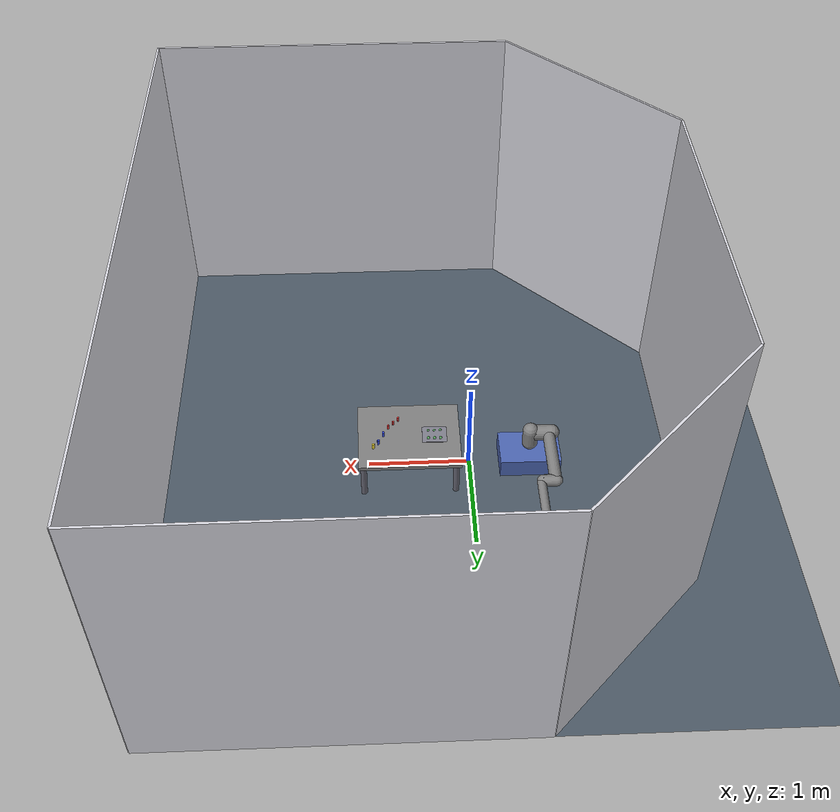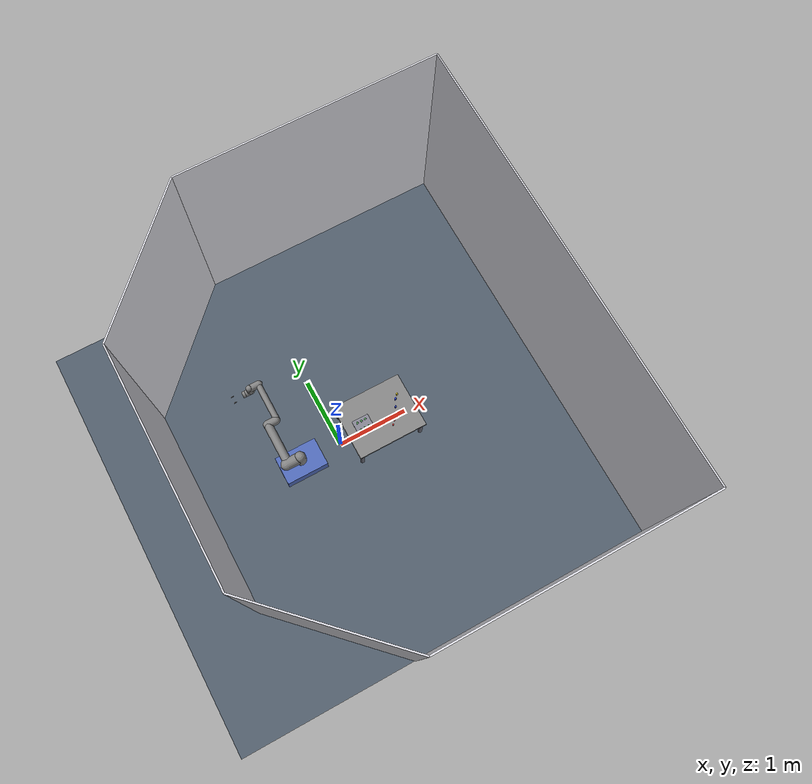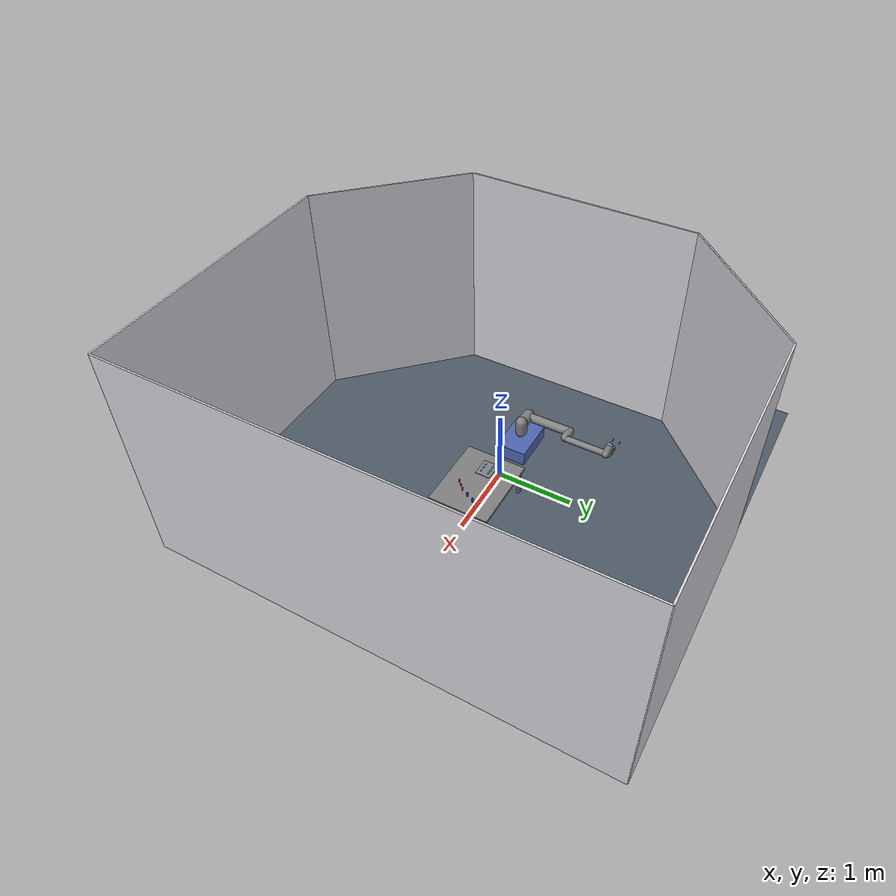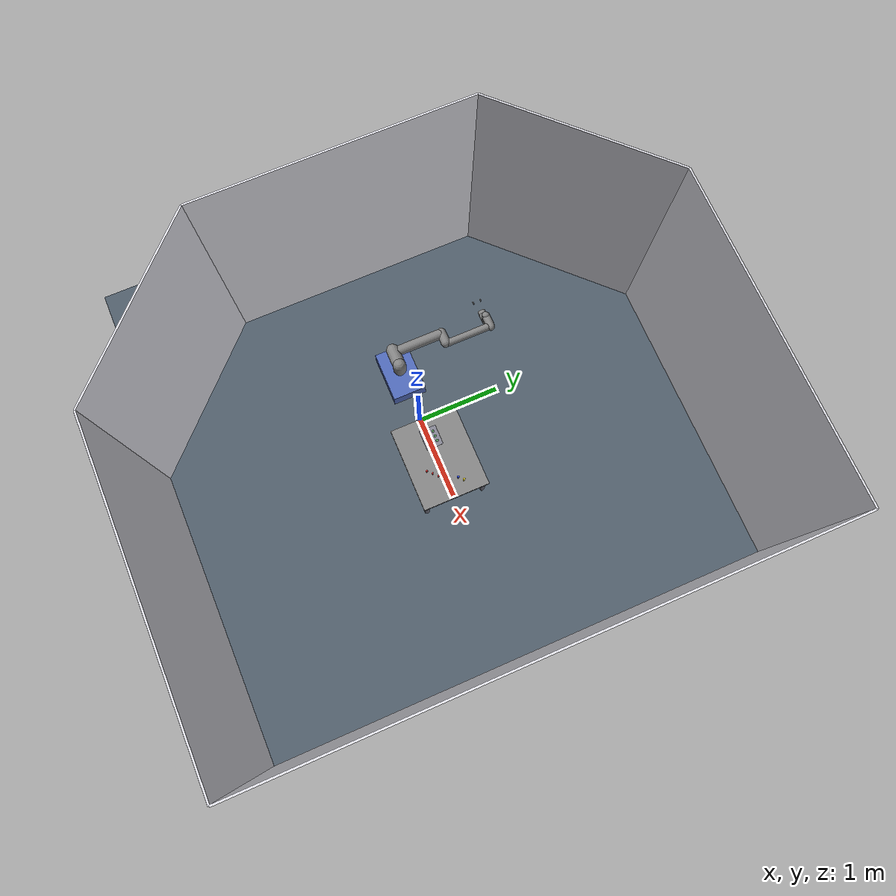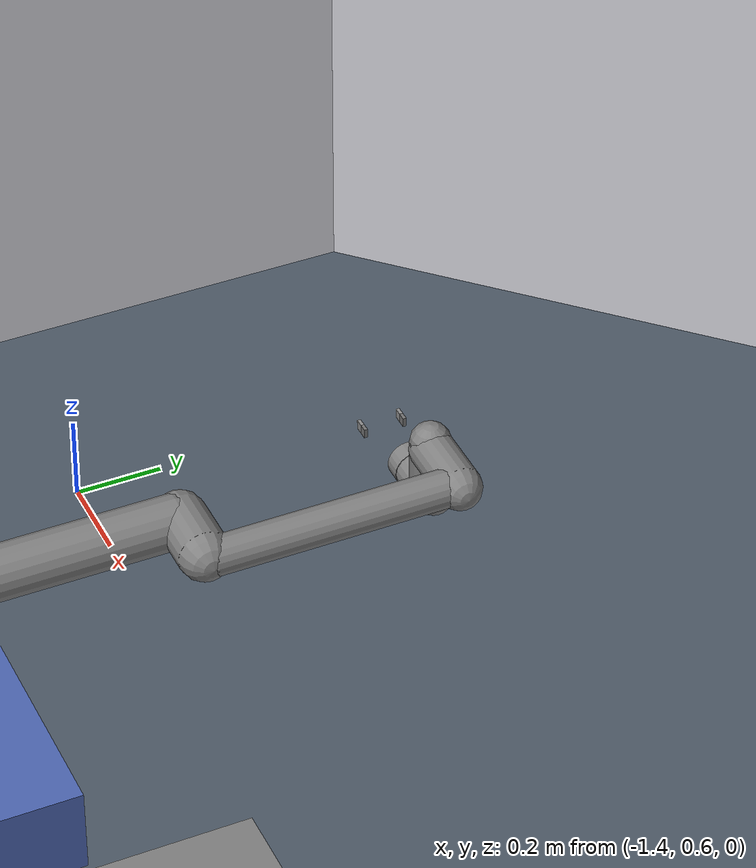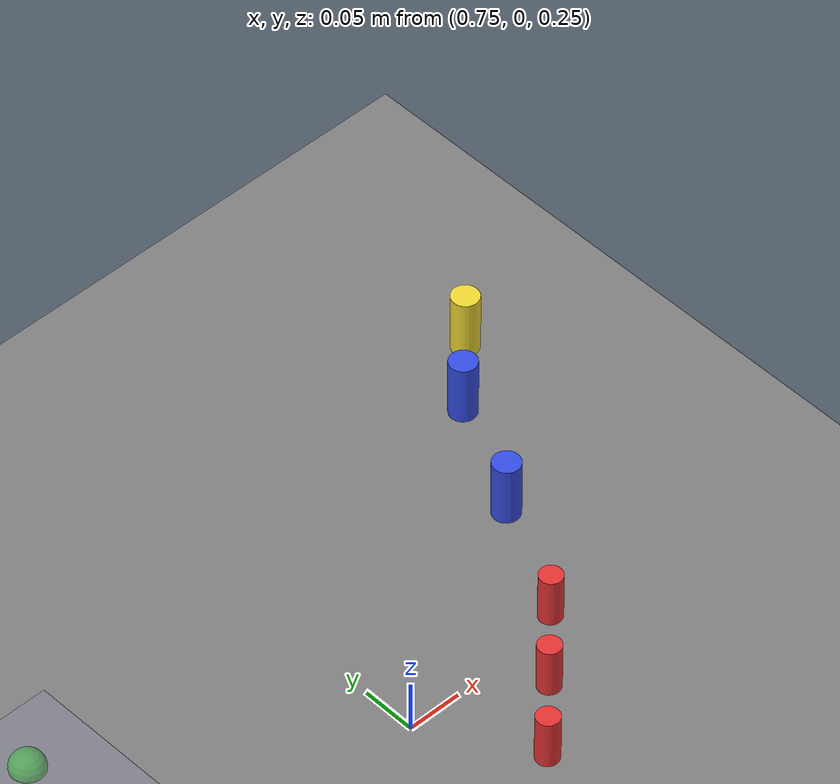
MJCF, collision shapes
<mujoco model="precision_placement">
  <!-- SPARK robosuite-style scene: Fine manipulation precision task -->
  <include file="ur_gripper.xml"/>

  <compiler angle="radian" autolimits="true"/>
  <option timestep="0.002" gravity="0 0 -9.81"/>

  <visual>
    <headlight diffuse="0.4 0.4 0.4" ambient="0.2 0.2 0.2" specular="0 0 0"/>
    <rgba haze="0.15 0.25 0.35 1"/>
    <global azimuth="120" elevation="-20"/>
  </visual>

  <statistic center="0.4 0 0.5" extent="1.2"/>

  <asset>
    <texture type="skybox" builtin="gradient" rgb1="0.3 0.5 0.8" rgb2="0.1 0.2 0.4" width="512" height="3072"/>
    <texture type="2d" name="floor_tex" builtin="checker" rgb1="0.35 0.4 0.45" rgb2="0.25 0.3 0.35" width="512" height="512" mark="cross" markrgb="0.5 0.5 0.55"/>
    <material name="floor_mat" texture="floor_tex" texrepeat="15 15" reflectance="0.2"/>
    <material name="table_ceramic" rgba="0.9 0.9 0.92 1"/>
    <material name="table_legs_metal" rgba="0.4 0.4 0.45 1" reflectance="0.8"/>
    <material name="walls_mat" rgba="0.85 0.85 0.88 1"/>
    <material name="target_green" rgba="0.2 0.8 0.2 0.5" reflectance="0.0"/>
    <material name="peg_red" rgba="0.9 0.2 0.2 1" reflectance="0.4"/>
    <material name="peg_blue" rgba="0.2 0.3 0.9 1" reflectance="0.4"/>
    <material name="peg_yellow" rgba="0.95 0.85 0.2 1" reflectance="0.4"/>
    <material name="base_plate" rgba="0.5 0.5 0.55 1" reflectance="0.3"/>
    <material name="pedestal_mat" rgba="0.3 0.4 0.7 1" reflectance="0.5"/>
  </asset>

  <worldbody>
    <!-- Soft distributed lighting -->
    <light pos="2 2 3" dir="-0.5 -0.5 -1" diffuse="0.25 0.25 0.25"/>
    <light pos="-2 2 3" dir="0.5 -0.5 -1" diffuse="0.2 0.2 0.2"/>
    <light pos="0 -2 3" dir="0 0.5 -1" diffuse="0.2 0.2 0.2"/>
    <light pos="0 0 4" dir="0 0 -1" directional="true" diffuse="0.5 0.5 0.5"/>

    <geom condim="3" group="1" material="floor_mat" name="floor" pos="0 0 0" size="3 3 .125" type="plane"/>

    <!-- Walls -->
    <geom pos="-1.25 2.25 1.5" quat="0.6532815 0.6532815 0.2705981 0.2705981" size="1.06 1.5 0.01" type="box" conaffinity="0" contype="0" group="1" material="walls_mat"/>
    <geom pos="-1.25 -2.25 1.5" quat="0.6532815 0.6532815 -0.2705981 -0.2705981" size="1.06 1.5 0.01" type="box" conaffinity="0" contype="0" group="1" material="walls_mat"/>
    <geom pos="1.25 3 1.5" quat="0.7071 0.7071 0 0" size="1.75 1.5 0.01" type="box" conaffinity="0" contype="0" group="1" material="walls_mat"/>
    <geom pos="1.25 -3 1.5" quat="0.7071 -0.7071 0 0" size="1.75 1.5 0.01" type="box" conaffinity="0" contype="0" group="1" material="walls_mat"/>
    <geom pos="-2 0 1.5" quat="0.5 0.5 0.5 0.5" size="1.5 1.5 0.01" type="box" conaffinity="0" contype="0" group="1" material="walls_mat"/>
    <geom pos="3 0 1.5" quat="0.5 0.5 -0.5 -0.5" size="3 1.5 0.01" type="box" conaffinity="0" contype="0" group="1" material="walls_mat"/>

    <body name="robot_pedestal" pos="-0.6 0 0.1">
      <geom type="box" size="0.3 0.2 0.1" material="pedestal_mat"/>
    </body>

    <!-- Table -->
    <body name="table" pos="0.6 0 0.4">
      <geom pos="0 0 0" size="0.5 0.4 0.02" type="box" group="0" friction="1 0.005 0.0001"/>
      <geom pos="0 0 0" size="0.5 0.4 0.02" type="box" conaffinity="0" contype="0" group="1" material="table_ceramic"/>
      <geom pos="0.45 0.35 -0.2" size="0.03 0.2" type="cylinder" conaffinity="0" contype="0" group="1" material="table_legs_metal"/>
      <geom pos="0.45 -0.35 -0.2" size="0.03 0.2" type="cylinder" conaffinity="0" contype="0" group="1" material="table_legs_metal"/>
      <geom pos="-0.45 0.35 -0.2" size="0.03 0.2" type="cylinder" conaffinity="0" contype="0" group="1" material="table_legs_metal"/>
      <geom pos="-0.45 -0.35 -0.2" size="0.03 0.2" type="cylinder" conaffinity="0" contype="0" group="1" material="table_legs_metal"/>
    </body>

    <!-- Precision placement board -->
    <body name="placement_board" pos="0.35 0 0.42">
      <geom pos="0 0 0" size="0.12 0.1 0.008" type="box" material="base_plate"/>
      <!-- Target holes (visual markers) -->
      <geom pos="-0.06 -0.05 0.01" size="0.012" type="sphere" conaffinity="0" contype="0" material="target_green"/>
      <geom pos="0.0 -0.05 0.01" size="0.012" type="sphere" conaffinity="0" contype="0" material="target_green"/>
      <geom pos="0.06 -0.05 0.01" size="0.012" type="sphere" conaffinity="0" contype="0" material="target_green"/>
      <geom pos="-0.06 0.05 0.01" size="0.015" type="sphere" conaffinity="0" contype="0" material="target_green"/>
      <geom pos="0.0 0.05 0.01" size="0.015" type="sphere" conaffinity="0" contype="0" material="target_green"/>
      <geom pos="0.06 0.05 0.01" size="0.015" type="sphere" conaffinity="0" contype="0" material="target_green"/>
    </body>

    <!-- Small pegs -->
    <body name="small_peg1" pos="0.7 -0.2 0.44">
      <freejoint name="small_peg1_free"/>
      <geom type="cylinder" size="0.01 0.025" material="peg_red" condim="6" friction="1 0.5 0.0001"/>
      <inertial pos="0 0 0" mass="0.015" diaginertia="0.00001 0.00001 0.00001"/>
    </body>

    <body name="small_peg2" pos="0.75 -0.15 0.44">
      <freejoint name="small_peg2_free"/>
      <geom type="cylinder" size="0.01 0.025" material="peg_red" condim="6" friction="1 0.5 0.0001"/>
      <inertial pos="0 0 0" mass="0.015" diaginertia="0.00001 0.00001 0.00001"/>
    </body>

    <body name="small_peg3" pos="0.8 -0.1 0.44">
      <freejoint name="small_peg3_free"/>
      <geom type="cylinder" size="0.01 0.025" material="peg_red" condim="6" friction="1 0.5 0.0001"/>
      <inertial pos="0 0 0" mass="0.015" diaginertia="0.00001 0.00001 0.00001"/>
    </body>

    <!-- Medium pegs -->
    <body name="med_peg1" pos="0.85 0 0.445">
      <freejoint name="med_peg1_free"/>
      <geom type="cylinder" size="0.012 0.03" material="peg_blue" condim="6" friction="1 0.5 0.0001"/>
      <inertial pos="0 0 0" mass="0.02" diaginertia="0.00001 0.00001 0.00001"/>
    </body>

    <body name="med_peg2" pos="0.9 0.1 0.445">
      <freejoint name="med_peg2_free"/>
      <geom type="cylinder" size="0.012 0.03" material="peg_blue" condim="6" friction="1 0.5 0.0001"/>
      <inertial pos="0 0 0" mass="0.02" diaginertia="0.00001 0.00001 0.00001"/>
    </body>

    <body name="med_peg3" pos="0.95 0.15 0.445">
      <freejoint name="med_peg3_free"/>
      <geom type="cylinder" size="0.012 0.03" material="peg_yellow" condim="6" friction="1 0.5 0.0001"/>
      <inertial pos="0 0 0" mass="0.02" diaginertia="0.00001 0.00001 0.00001"/>
    </body>

    <!-- Cameras -->
    <body name="camera1" pos="0.6 0.0 1.8">
      <camera name="camera1" fovy="50" pos="0 0 0" xyaxes="1 0 0 0 0 1"/>
    </body>
    <body name="camera2" pos="0.550 -1.473 1.462">
      <camera name="camera2" fovy="60" pos="0 0 0" xyaxes="1.000 0.013 0.000 -0.008 0.612 0.791"/>
    </body>
    <body name="camera3" pos="0.615 1.473 1.024">
      <camera name="camera3" fovy="60" pos="0 0 0" xyaxes="-1.000 0.017 0.000 -0.008 -0.438 0.899"/>
    </body>

    <body name="keypoint_markers" pos="0 0 0">
      <site name="keypoint_0" pos="0 0 -10" size="0.01" rgba="1 0 0 0" type="sphere"/>
      <site name="keypoint_1" pos="0 0 -10" size="0.01" rgba="1 0.2 0 0" type="sphere"/>
      <site name="keypoint_2" pos="0 0 -10" size="0.01" rgba="1 0.4 0 0" type="sphere"/>
      <site name="keypoint_3" pos="0 0 -10" size="0.01" rgba="1 0.6 0 0" type="sphere"/>
      <site name="keypoint_4" pos="0 0 -10" size="0.01" rgba="1 0.8 0 0" type="sphere"/>
    </body>
  </worldbody>

  <keyframe>
    <key name="home" qpos="0 -1.5708 1.5708 -1.5708 -1.5708 0  0 0 0 0 0 0 0 0  0.7 -0.2 0.44 1 0 0 0  0.75 -0.15 0.44 1 0 0 0  0.8 -0.1 0.44 1 0 0 0  0.85 0 0.445 1 0 0 0  0.9 0.1 0.445 1 0 0 0  0.95 0.15 0.445 1 0 0 0"
         ctrl="0 -1.5708 1.5708 -1.5708 -1.5708 0  0"/>
  </keyframe>
</mujoco>

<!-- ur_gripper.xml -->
<mujoco model="ur_gripper">
<compiler angle="radian" meshdir="../../mujoco_menagerie/universal_robots_ur10e/assets" autolimits="true"/>
<option impratio="10" integrator="RK4"/>
<default class="main">
<default class="ur10e">
<material shininess="0.25"/>
<joint range="-6.28319 6.28319" armature="0.1"/>
<general ctrlrange="-6.2831 6.2831" biastype="affine" gainprm="5000 0 0 0 0 0 0 0 0 0" biasprm="0 -5000 -500 0 0 0 0 0 0 0"/>
<default class="size4">
<joint damping="10"/>
<general forcerange="-330 330"/>
</default>
<default class="size3">
<joint damping="5"/>
<general forcerange="-150 150"/>
<default class="size3_limited">
<joint range="-3.1415 3.1415"/>
<general ctrlrange="-3.1415 3.1415"/>
</default>
</default>
<default class="size2">
<joint damping="2"/>
<general forcerange="-56 56"/>
</default>
<default class="visual">
<geom type="mesh" contype="0" conaffinity="0" group="2"/>
</default>
<default class="collision">
<geom type="capsule" group="3"/>
<default class="eef_collision">
<geom type="cylinder"/>
</default>
</default>
</default>
<default class="2f85">
<mesh scale="0.001 0.001 0.001"/>
<general biastype="affine"/>
<default class="driver">
<joint solreflimit="0.005 1" solimplimit="0.95 0.99 0.001 0.5 2" range="0 0.8" armature="0.005" damping="0.1"/>
</default>
<default class="follower">
<joint solreflimit="0.005 1" solimplimit="0.95 0.99 0.001 0.5 2" range="-0.872664 0.872664"/>
</default>
<default class="spring_link">
<joint springref="2.62" stiffness="0.05" range="-0.296706 0.8" damping="0.00125"/>
</default>
<default class="coupler">
<joint solreflimit="0.005 1" solimplimit="0.95 0.99 0.001 0.5 2" range="-1.57 0"/>
</default>
<default class="visual2">
<geom type="mesh" contype="0" conaffinity="0" group="2"/>
</default>
<default class="collision2">
<geom type="mesh" group="3"/>
<default class="pad_box1">
<geom size="0.011 0.004 0.009375" type="box" priority="1" friction="0.7 0.005 0.0001" solref="0.004 1" solimp="0.95 0.99 0.001 0.5 2" rgba="0.55 0.55 0.55 1"/>
</default>
<default class="pad_box2">
<geom size="0.011 0.004 0.009375" type="box" priority="1" friction="0.6 0.005 0.0001" solref="0.004 1" solimp="0.95 0.99 0.001 0.5 2" rgba="0.45 0.45 0.45 1"/>
</default>
</default>
</default>
</default>
<asset>
<material name="black" class="ur10e" rgba="0.033 0.033 0.033 1"/>
<material name="jointgray" class="ur10e" rgba="0.278 0.278 0.278 1"/>
<material name="linkgray" class="ur10e" rgba="0.82 0.82 0.82 1"/>
<material name="urblue" class="ur10e" rgba="0.49 0.678 0.8 1"/>
<material name="metal" rgba="0.58 0.58 0.58 1"/>
<material name="silicone" rgba="0.1882 0.1882 0.1882 1"/>
<material name="gray" rgba="0.4627 0.4627 0.4627 1"/>
<material name="black2" rgba="0.149 0.149 0.149 1"/>
<mesh name="base_0" file="base_0.obj"/>
<mesh name="base_1" file="base_1.obj"/>
<mesh name="shoulder_0" file="shoulder_0.obj"/>
<mesh name="shoulder_1" file="shoulder_1.obj"/>
<mesh name="shoulder_2" file="shoulder_2.obj"/>
<mesh name="upperarm_0" file="upperarm_0.obj"/>
<mesh name="upperarm_1" file="upperarm_1.obj"/>
<mesh name="upperarm_2" file="upperarm_2.obj"/>
<mesh name="upperarm_3" file="upperarm_3.obj"/>
<mesh name="forearm_0" file="forearm_0.obj"/>
<mesh name="forearm_1" file="forearm_1.obj"/>
<mesh name="forearm_2" file="forearm_2.obj"/>
<mesh name="forearm_3" file="forearm_3.obj"/>
<mesh name="wrist1_0" file="wrist1_0.obj"/>
<mesh name="wrist1_1" file="wrist1_1.obj"/>
<mesh name="wrist1_2" file="wrist1_2.obj"/>
<mesh name="wrist2_0" file="wrist2_0.obj"/>
<mesh name="wrist2_1" file="wrist2_1.obj"/>
<mesh name="wrist2_2" file="wrist2_2.obj"/>
<mesh name="wrist3" file="wrist3.obj"/>
<mesh name="base_mount" class="2f85" file="../../robotiq_2f85/assets/base_mount.stl"/>
<mesh name="base" class="2f85" file="../../robotiq_2f85/assets/base.stl"/>
<mesh name="driver" class="2f85" file="../../robotiq_2f85/assets/driver.stl"/>
<mesh name="coupler" class="2f85" file="../../robotiq_2f85/assets/coupler.stl"/>
<mesh name="follower" class="2f85" file="../../robotiq_2f85/assets/follower.stl"/>
<mesh name="pad" class="2f85" file="../../robotiq_2f85/assets/pad.stl"/>
<mesh name="silicone_pad" class="2f85" file="../../robotiq_2f85/assets/silicone_pad.stl"/>
<mesh name="spring_link" class="2f85" file="../../robotiq_2f85/assets/spring_link.stl"/>
</asset>
<worldbody>
<light name="spotlight" target="wrist_2_link" pos="0 -1 2" dir="0 0 -1" mode="targetbodycom"/>
<body name="base" childclass="ur10e" pos="-0.6 0 0.225" quat="0.707107 0 0 0.707107" gravcomp="0">
<inertial pos="0 0 0" mass="4" diaginertia="0.00610633 0.00610633 0.01125"/>
<geom class="visual" material="black" mesh="base_0"/>
<geom class="visual" material="jointgray" mesh="base_1"/>
<body name="shoulder_link" pos="0 0 0.181" gravcomp="0">
<inertial pos="0 0 0" mass="7.778" diaginertia="0.0314743 0.0314743 0.0218756"/>
<joint name="shoulder_pan_joint" class="size4" pos="0 0 0"  axis="0 0 1"/>
<geom class="visual" material="urblue" mesh="shoulder_0"/>
<geom class="visual" material="black" mesh="shoulder_1"/>
<geom class="visual" material="jointgray" mesh="shoulder_2"/>
<geom class="collision" size="0.078 0.08" pos="0 0 -0.05"/>
<body name="upper_arm_link" pos="0 0.176 0" quat="0.707107 0 0.707107 0" gravcomp="0">
<inertial pos="0 0 0.3065" mass="12.93" diaginertia="0.423074 0.423074 0.0363656"/>
<joint name="shoulder_lift_joint" class="size4" pos="0 0 0" axis="0 1 0"/>
<geom class="visual" material="black" mesh="upperarm_0"/>
<geom class="visual" material="jointgray" mesh="upperarm_1"/>
<geom class="visual" material="urblue" mesh="upperarm_2"/>
<geom class="visual" material="linkgray" mesh="upperarm_3"/>
<geom class="collision" size="0.078 0.08" pos="0 -0.05 0" quat="0.707107 0.707107 0 0"/>
<geom class="collision" size="0.06 0.3" pos="0 0 0.3"/>
<body name="forearm_link" pos="0 -0.137 0.613" gravcomp="0">
<inertial pos="0 0 0.2855" mass="3.87" diaginertia="0.11059 0.11059 0.0108844"/>
<joint name="elbow_joint" class="size3_limited" pos="0 0 0" axis="0 1 0"/>
<geom class="visual" material="urblue" mesh="forearm_0"/>
<geom class="visual" material="black" mesh="forearm_1"/>
<geom class="visual" material="jointgray" mesh="forearm_2"/>
<geom class="visual" material="linkgray" mesh="forearm_3"/>
<geom class="collision" size="0.058 0.065" pos="0 0.08 0" quat="0.707107 0.707107 0 0"/>
<geom class="collision" size="0.043 0.28" pos="0 0 0.29"/>
<body name="wrist_1_link" pos="0 0 0.571" quat="0.707107 0 0.707107 0" gravcomp="0">
<inertial pos="0 0.135 0" quat="0.5 0.5 -0.5 0.5" mass="1.96" diaginertia="0.0055125 0.00510825 0.00510825"/>
<joint name="wrist_1_joint" class="size2" pos="0 0 0" axis="0 1 0"/>
<geom class="visual" material="black" mesh="wrist1_0"/>
<geom class="visual" material="urblue" mesh="wrist1_1"/>
<geom class="visual" material="jointgray" mesh="wrist1_2"/>
<geom class="collision" size="0.05 0.07" pos="0 0.06 0" quat="0.707107 0.707107 0 0"/>
<body name="wrist_2_link" pos="0 0.135 0" gravcomp="0">
<inertial pos="0 0 0.12" quat="0.5 0.5 -0.5 0.5" mass="1.96" diaginertia="0.0055125 0.00510825 0.00510825"/>
<joint name="wrist_2_joint" class="size2" pos="0 0 0" axis="0 0 1"/>
<geom class="visual" material="black" mesh="wrist2_0"/>
<geom class="visual" material="urblue" mesh="wrist2_1"/>
<geom class="visual" material="jointgray" mesh="wrist2_2"/>
<geom class="collision" size="0.046 0.065" pos="0 0 0.05"/>
<geom class="collision" size="0.046 0.043" pos="0 0.028 0.12" quat="0.707107 0.707107 0 0"/>
<body name="wrist_3_link" pos="0 0 0.12" gravcomp="0">
<inertial pos="0 0.092 0" quat="0 0.707107 -0.707107 0" mass="0.202" diaginertia="0.000204525 0.000144346 0.000144346"/>
<joint name="wrist_3_joint" class="size2" pos="0 0 0" axis="0 1 0"/>
<geom class="visual" material="linkgray" mesh="wrist3"/>
<geom class="eef_collision" size="0.046 0.02" pos="0 0.097 0" quat="0.707107 0.707107 0 0"/>
<site name="attachment_site" pos="0 0.1 0" quat="-0.707107 0.707107 0 0" size="0.001" group="4" rgba="255 0 0 1"/>
<site name="ft_sensor_site" pos="0 0.1 0" quat="-0.707107 0.707107 0 0" size="0.001" group="5" rgba="0 255 0 0.5"/>
<body name="base_mount" childclass="2f85" pos="0 0.115 0" quat="-0.707107 0.707107 0 0" gravcomp="0">
<geom class="visual2" material="black2" mesh="base_mount"/>
<geom class="collision2" mesh="base_mount"/>
<body name="base2" pos="0 0 0.0038" quat="0.707107 0 0 -0.707107" gravcomp="0">
<inertial pos="0 -2.70394e-05 0.0354675" quat="0.999999 -0.00152849 0 0" mass="0.777441" diaginertia="0.000260285 0.000225381 0.000152708"/>
<geom class="visual2" material="black2" mesh="base"/>
<geom class="collision2" mesh="base"/>
<site name="pinch" pos="0 0 0.145" group="5" rgba="255 0.9 0.9 1"/>
<body name="right_driver" pos="0 0.0306011 0.054904" gravcomp="0">
<inertial pos="2.96931e-12 0.0177547 0.00107314" quat="0.681301 0.732003 0 0" mass="0.00899563" diaginertia="1.72352e-06 1.60906e-06 3.22006e-07"/>
<joint name="right_driver_joint" class="driver" pos="0 0 0" axis="1 0 0" armature="0.01"/>
<geom class="visual2" material="gray" mesh="driver"/>
<geom class="collision2" mesh="driver"/>
<body name="right_coupler" pos="0 0.0315 -0.0041" gravcomp="0">
<inertial pos="0 0.00301209 0.0232175" quat="0.705636 -0.0455904 0.0455904 0.705636" mass="0.0140974" diaginertia="4.16206e-06 3.52216e-06 8.88131e-07"/>
<joint name="right_coupler_joint" class="coupler" pos="0 0 0" axis="1 0 0"/>
<geom class="visual2" material="black2" mesh="coupler"/>
<geom class="collision2" mesh="coupler"/>
</body>
</body>
<body name="right_spring_link" pos="0 0.0132 0.0609" gravcomp="0">
<inertial pos="-8.65005e-09 0.0181624 0.0212658" quat="0.663403 -0.244737 0.244737 0.663403" mass="0.0221642" diaginertia="8.96853e-06 6.71733e-06 2.63931e-06"/>
<joint name="right_spring_link_joint" class="spring_link" pos="0 0 0" axis="1 0 0" springref="2.62" armature="0.001"/>
<geom class="visual2" material="black2" mesh="spring_link"/>
<geom class="collision2" mesh="spring_link"/>
<body name="right_follower" pos="0 0.055 0.0375" gravcomp="0">
<inertial pos="0 -0.011046 0.0124786" quat="0.986437 0.164143 0 0" mass="0.0125222" diaginertia="2.67415e-06 2.4559e-06 6.02031e-07"/>
<joint name="right_follower_joint" class="follower" pos="0 -0.018 0.0065" axis="1 0 0"/>
<geom class="visual2" material="black2" mesh="follower"/>
<geom class="collision2" mesh="follower"/>
<body name="right_pad" pos="0 -0.0189 0.01352" gravcomp="0">
<inertial pos="0 -0.0025 0.0185" quat="0.707107 0 0 0.707107" mass="0.0035" diaginertia="4.73958e-07 3.64583e-07 1.23958e-07"/>
<geom name="right_pad1" class="pad_box1" pos="0 -0.0026 0.028125" mass="0"/>
<geom name="right_pad2" class="pad_box2" pos="0 -0.0026 0.009375" mass="0"/>
<geom class="visual2" mesh="pad"/>
<body name="right_silicone_pad" pos="0 0 0" gravcomp="0">
<geom class="visual2" material="black2" mesh="silicone_pad"/>
</body>
</body>
</body>
</body>
<body name="left_driver" pos="0 -0.0306011 0.054904" quat="0 0 0 1" gravcomp="0">
<inertial pos="0 0.0177547 0.00107314" quat="0.681301 0.732003 0 0" mass="0.00899563" diaginertia="1.72352e-06 1.60906e-06 3.22006e-07"/>
<joint name="left_driver_joint" class="driver" pos="0 0 0" axis="1 0 0" armature="0.01"/>
<geom class="visual2" material="gray" mesh="driver"/>
<geom class="collision2" mesh="driver"/>
<body name="left_coupler" pos="0 0.0315 -0.0041" gravcomp="0">
<inertial pos="0 0.00301209 0.0232175" quat="0.705636 -0.0455904 0.0455904 0.705636" mass="0.0140974" diaginertia="4.16206e-06 3.52216e-06 8.88131e-07"/>
<joint name="left_coupler_joint" class="coupler" pos="0 0 0" axis="1 0 0"/>
<geom class="visual2" material="black2" mesh="coupler"/>
<geom class="collision2" mesh="coupler"/>
</body>
</body>
<body name="left_spring_link" pos="0 -0.0132 0.0609" quat="0 0 0 1" gravcomp="0">
<inertial pos="-8.65005e-09 0.0181624 0.0212658" quat="0.663403 -0.244737 0.244737 0.663403" mass="0.0221642" diaginertia="8.96853e-06 6.71733e-06 2.63931e-06"/>
<joint name="left_spring_link_joint" class="spring_link" pos="0 0 0" axis="1 0 0" springref="2.62" armature="0.001"/>
<geom class="visual2" material="black2" mesh="spring_link"/>
<geom class="collision2" mesh="spring_link"/>
<body name="left_follower" pos="0 0.055 0.0375" gravcomp="0">
<inertial pos="0 -0.011046 0.0124786" quat="0.986437 0.164143 0 0" mass="0.0125222" diaginertia="2.67415e-06 2.4559e-06 6.02031e-07"/>
<joint name="left_follower_joint" class="follower" pos="0 -0.018 0.0065" axis="1 0 0"/>
<geom class="visual2" material="black2" mesh="follower"/>
<geom class="collision2" mesh="follower"/>
<body name="left_pad" pos="0 -0.0189 0.01352" gravcomp="0">
<inertial pos="0 -0.0025 0.0185" quat="0.707107 0 0 0.707107" mass="0.0035" diaginertia="4.73958e-07 3.64583e-07 1.23958e-07"/>
<geom name="left_pad1" class="pad_box1" pos="0 -0.0026 0.028125" mass="0"/>
<geom name="left_pad2" class="pad_box2" pos="0 -0.0026 0.009375" mass="0"/>
<geom class="visual2" mesh="pad"/>
<body name="left_silicone_pad" pos="0 0 0" gravcomp="0">
<geom class="visual2" material="black2" mesh="silicone_pad"/>
</body>
</body>
</body>
</body>
</body>
</body>
</body>
</body>
</body>
</body>
</body>
</body>
</body>
</worldbody>
<contact>
<exclude body1="wrist_3_link" body2="right_driver"/>
<exclude body1="wrist_3_link" body2="right_coupler"/>
<exclude body1="wrist_3_link" body2="right_spring_link"/>
<exclude body1="wrist_3_link" body2="right_follower"/>
<exclude body1="wrist_3_link" body2="left_driver"/>
<exclude body1="wrist_3_link" body2="left_coupler"/>
<exclude body1="wrist_3_link" body2="left_spring_link"/>
<exclude body1="wrist_3_link" body2="left_follower"/>
<exclude body1="base2" body2="right_driver"/>
<exclude body1="base2" body2="right_spring_link"/>
<exclude body1="base2" body2="left_driver"/>
<exclude body1="base2" body2="left_spring_link"/>
<exclude body1="right_coupler" body2="right_follower"/>
<exclude body1="left_coupler" body2="left_follower"/>
</contact>
<equality>
<connect body1="right_follower" body2="right_coupler" anchor="0 0 0" solref="0.005 1" solimp="0.95 0.99 0.001 0.5 2"/>
<connect body1="left_follower" body2="left_coupler" anchor="0 0 0" solref="0.005 1" solimp="0.95 0.99 0.001 0.5 2"/>
<joint joint1="right_driver_joint" joint2="left_driver_joint" polycoef="0 1 0 0 0" solref="0.005 1" solimp="0.95 0.99 0.001 0.5 2"/>
</equality>
<tendon>
<fixed name="split">
<joint joint="right_driver_joint" coef="0.5"/>
<joint joint="left_driver_joint" coef="0.5"/>
</fixed>
</tendon>
<actuator>
<general name="shoulder_pan" class="size4" joint="shoulder_pan_joint" actdim="0"/>
<general name="shoulder_lift" class="size4" joint="shoulder_lift_joint" actdim="0"/>
<general name="elbow" class="size3_limited" joint="elbow_joint" actdim="0"/>
<general name="wrist_1" class="size2" joint="wrist_1_joint" actdim="0"/>
<general name="wrist_2" class="size2" joint="wrist_2_joint" actdim="0"/>
<general name="wrist_3" class="size2" joint="wrist_3_joint" actdim="0"/>
<general name="fingers_actuator" class="2f85" tendon="split" ctrlrange="0 255" forcerange="-5 5" actdim="0" gainprm="0.313725 0 0 0 0 0 0 0 0 0" biasprm="0 -100 -10 0 0 0 0 0 0 0"/>
</actuator>
<sensor>
  <!-- Force/Torque sensor at wrist (measures interaction between wrist_3_link and its parent) -->
  <force name="wrist_force" site="ft_sensor_site"/>
  <torque name="wrist_torque" site="ft_sensor_site"/>
  <!-- Gripper motor force (from actuator - this is what real Robotiq gives you) -->
  <actuatorfrc name="gripper_force" actuator="fingers_actuator"/>
  <!-- Joint position sensors for arm -->
  <jointpos name="shoulder_pan_pos" joint="shoulder_pan_joint"/>
  <jointpos name="shoulder_lift_pos" joint="shoulder_lift_joint"/>
  <jointpos name="elbow_pos" joint="elbow_joint"/>
  <jointpos name="wrist_1_pos" joint="wrist_1_joint"/>
  <jointpos name="wrist_2_pos" joint="wrist_2_joint"/>
  <jointpos name="wrist_3_pos" joint="wrist_3_joint"/>
  <!-- Gripper position sensor (encoder - real Robotiq has this) -->
  <jointpos name="gripper_pos" joint="right_driver_joint"/>
</sensor>
</mujoco>
